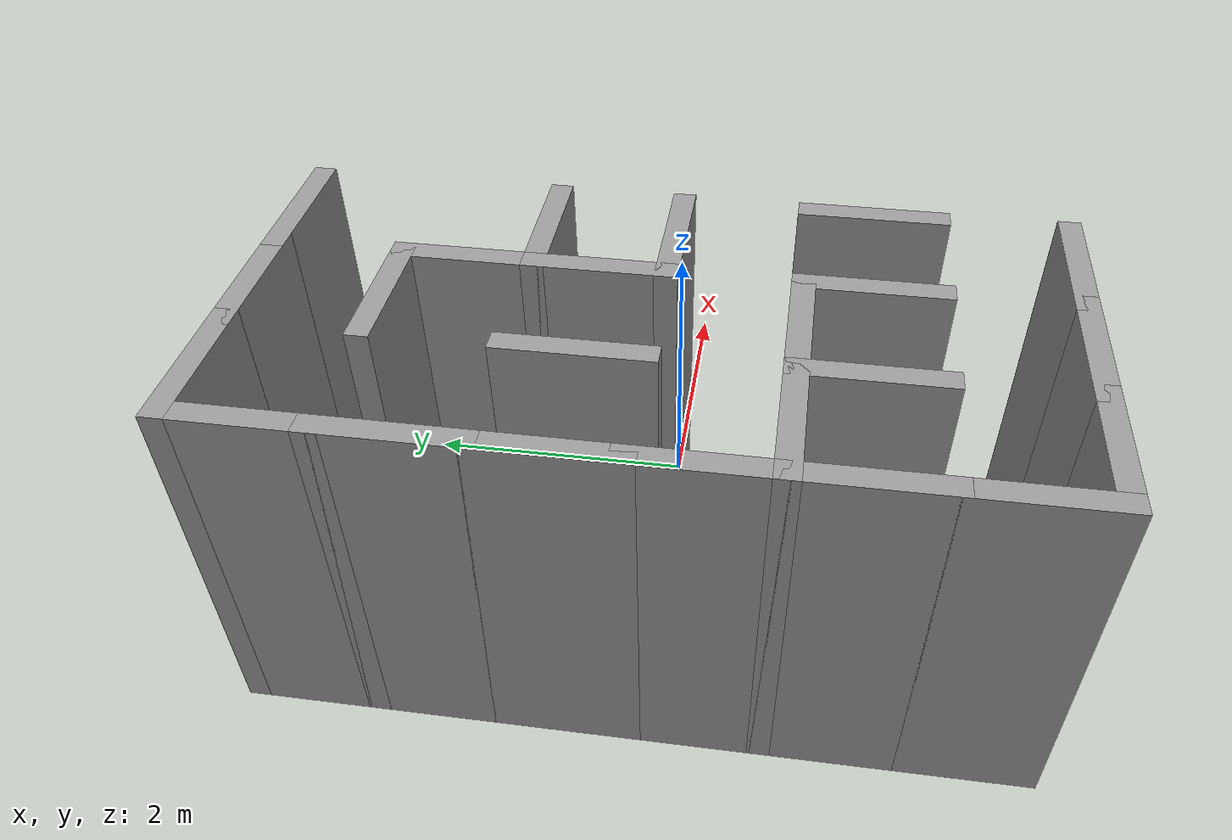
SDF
<sdf version="1.7">
 <model name="mazeMap">
  <link name="Wall_102">
   <pose>-2.55 -1.275 0 0 -0 1.5708</pose>
   <visual name="Wall_102_Visual">
    <pose>0 0 1.25 0 -0 0</pose>
    <geometry><box><size>1 0.15 2.5</size></box></geometry>
    <material>
     <script><uri>file://media/materials/scripts/gazebo.material</uri><name>Gazebo/Grey</name></script>
     <ambient>1 1 1 1</ambient>
     <shader type="pixel"/>
    </material>
    <meta><layer>0</layer></meta>
   </visual>
   <collision name="Wall_102_Collision">
    <pose>0 0 1.25 0 -0 0</pose>
    <geometry><box><size>1 0.15 2.5</size></box></geometry>
    <surface>
     <friction>
      <ode><mu>1</mu><mu2>1</mu2><fdir1>0 0 0</fdir1><slip1>0</slip1><slip2>0</slip2></ode>
      <torsional>
       <coefficient>1</coefficient>
       <patch_radius>0</patch_radius>
       <surface_radius>0</surface_radius>
       <use_patch_radius>1</use_patch_radius>
       <ode><slip>0</slip></ode>
      </torsional>
     </friction>
     <bounce><restitution_coefficient>0</restitution_coefficient><threshold>1e+06</threshold></bounce>
     <contact>
      <collide_without_contact>0</collide_without_contact>
      <collide_without_contact_bitmask>1</collide_without_contact_bitmask>
      <collide_bitmask>1</collide_bitmask>
      <ode>
       <soft_cfm>0</soft_cfm>
       <soft_erp>0.2</soft_erp>
       <kp>1e+13</kp>
       <kd>1</kd>
       <max_vel>0.01</max_vel>
       <min_depth>0</min_depth>
      </ode>
      <bullet>
       <split_impulse>1</split_impulse>
       <split_impulse_penetration_threshold>-0.01</split_impulse_penetration_threshold>
       <soft_cfm>0</soft_cfm>
       <soft_erp>0.2</soft_erp>
       <kp>1e+13</kp>
       <kd>1</kd>
      </bullet>
     </contact>
    </surface>
   </collision>
  </link>
  <link name="Wall_103">
   <pose>-2.125 -0.85 0 0 -0 0</pose>
   <visual name="Wall_103_Visual">
    <pose>0 0 1.25 0 -0 0</pose>
    <geometry><box><size>1 0.15 2.5</size></box></geometry>
    <material>
     <script><uri>file://media/materials/scripts/gazebo.material</uri><name>Gazebo/Grey</name></script>
     <ambient>1 1 1 1</ambient>
     <shader type="pixel"/>
    </material>
    <meta><layer>0</layer></meta>
   </visual>
   <collision name="Wall_103_Collision">
    <pose>0 0 1.25 0 -0 0</pose>
    <geometry><box><size>1 0.15 2.5</size></box></geometry>
    <surface>
     <friction>
      <ode><mu>1</mu><mu2>1</mu2><fdir1>0 0 0</fdir1><slip1>0</slip1><slip2>0</slip2></ode>
      <torsional>
       <coefficient>1</coefficient>
       <patch_radius>0</patch_radius>
       <surface_radius>0</surface_radius>
       <use_patch_radius>1</use_patch_radius>
       <ode><slip>0</slip></ode>
      </torsional>
     </friction>
     <bounce><restitution_coefficient>0</restitution_coefficient><threshold>1e+06</threshold></bounce>
     <contact>
      <collide_without_contact>0</collide_without_contact>
      <collide_without_contact_bitmask>1</collide_without_contact_bitmask>
      <collide_bitmask>1</collide_bitmask>
      <ode>
       <soft_cfm>0</soft_cfm>
       <soft_erp>0.2</soft_erp>
       <kp>1e+13</kp>
       <kd>1</kd>
       <max_vel>0.01</max_vel>
       <min_depth>0</min_depth>
      </ode>
      <bullet>
       <split_impulse>1</split_impulse>
       <split_impulse_penetration_threshold>-0.01</split_impulse_penetration_threshold>
       <soft_cfm>0</soft_cfm>
       <soft_erp>0.2</soft_erp>
       <kp>1e+13</kp>
       <kd>1</kd>
      </bullet>
     </contact>
    </surface>
   </collision>
  </link>
  <link name="Wall_104">
   <pose>-1.7 -1.275 0 0 0 -1.5708</pose>
   <visual name="Wall_104_Visual">
    <pose>0 0 1.25 0 -0 0</pose>
    <geometry><box><size>1 0.15 2.5</size></box></geometry>
    <material>
     <script><uri>file://media/materials/scripts/gazebo.material</uri><name>Gazebo/Grey</name></script>
     <ambient>1 1 1 1</ambient>
     <shader type="pixel"/>
    </material>
    <meta><layer>0</layer></meta>
   </visual>
   <collision name="Wall_104_Collision">
    <pose>0 0 1.25 0 -0 0</pose>
    <geometry><box><size>1 0.15 2.5</size></box></geometry>
    <surface>
     <friction>
      <ode><mu>1</mu><mu2>1</mu2><fdir1>0 0 0</fdir1><slip1>0</slip1><slip2>0</slip2></ode>
      <torsional>
       <coefficient>1</coefficient>
       <patch_radius>0</patch_radius>
       <surface_radius>0</surface_radius>
       <use_patch_radius>1</use_patch_radius>
       <ode><slip>0</slip></ode>
      </torsional>
     </friction>
     <bounce><restitution_coefficient>0</restitution_coefficient><threshold>1e+06</threshold></bounce>
     <contact>
      <collide_without_contact>0</collide_without_contact>
      <collide_without_contact_bitmask>1</collide_without_contact_bitmask>
      <collide_bitmask>1</collide_bitmask>
      <ode>
       <soft_cfm>0</soft_cfm>
       <soft_erp>0.2</soft_erp>
       <kp>1e+13</kp>
       <kd>1</kd>
       <max_vel>0.01</max_vel>
       <min_depth>0</min_depth>
      </ode>
      <bullet>
       <split_impulse>1</split_impulse>
       <split_impulse_penetration_threshold>-0.01</split_impulse_penetration_threshold>
       <soft_cfm>0</soft_cfm>
       <soft_erp>0.2</soft_erp>
       <kp>1e+13</kp>
       <kd>1</kd>
      </bullet>
     </contact>
    </surface>
   </collision>
  </link>
  <link name="Wall_106">
   <pose>-2.55 -2.125 0 0 0 -1.5708</pose>
   <visual name="Wall_106_Visual">
    <pose>0 0 1.25 0 -0 0</pose>
    <geometry><box><size>1 0.15 2.5</size></box></geometry>
    <material>
     <script><uri>file://media/materials/scripts/gazebo.material</uri><name>Gazebo/Grey</name></script>
     <ambient>1 1 1 1</ambient>
     <shader type="pixel"/>
    </material>
    <meta><layer>0</layer></meta>
   </visual>
   <collision name="Wall_106_Collision">
    <pose>0 0 1.25 0 -0 0</pose>
    <geometry><box><size>1 0.15 2.5</size></box></geometry>
    <surface>
     <friction>
      <ode><mu>1</mu><mu2>1</mu2><fdir1>0 0 0</fdir1><slip1>0</slip1><slip2>0</slip2></ode>
      <torsional>
       <coefficient>1</coefficient>
       <patch_radius>0</patch_radius>
       <surface_radius>0</surface_radius>
       <use_patch_radius>1</use_patch_radius>
       <ode><slip>0</slip></ode>
      </torsional>
     </friction>
     <bounce><restitution_coefficient>0</restitution_coefficient><threshold>1e+06</threshold></bounce>
     <contact>
      <collide_without_contact>0</collide_without_contact>
      <collide_without_contact_bitmask>1</collide_without_contact_bitmask>
      <collide_bitmask>1</collide_bitmask>
      <ode>
       <soft_cfm>0</soft_cfm>
       <soft_erp>0.2</soft_erp>
       <kp>1e+13</kp>
       <kd>1</kd>
       <max_vel>0.01</max_vel>
       <min_depth>0</min_depth>
      </ode>
      <bullet>
       <split_impulse>1</split_impulse>
       <split_impulse_penetration_threshold>-0.01</split_impulse_penetration_threshold>
       <soft_cfm>0</soft_cfm>
       <soft_erp>0.2</soft_erp>
       <kp>1e+13</kp>
       <kd>1</kd>
      </bullet>
     </contact>
    </surface>
   </collision>
  </link>
  <link name="Wall_108">
   <pose>-2.125 -2.55 0 0 -0 0</pose>
   <visual name="Wall_108_Visual">
    <pose>0 0 1.25 0 -0 0</pose>
    <geometry><box><size>1 0.15 2.5</size></box></geometry>
    <material>
     <script><uri>file://media/materials/scripts/gazebo.material</uri><name>Gazebo/Grey</name></script>
     <ambient>1 1 1 1</ambient>
     <shader type="pixel"/>
    </material>
    <meta><layer>0</layer></meta>
   </visual>
   <collision name="Wall_108_Collision">
    <pose>0 0 1.25 0 -0 0</pose>
    <geometry><box><size>1 0.15 2.5</size></box></geometry>
    <surface>
     <friction>
      <ode><mu>1</mu><mu2>1</mu2><fdir1>0 0 0</fdir1><slip1>0</slip1><slip2>0</slip2></ode>
      <torsional>
       <coefficient>1</coefficient>
       <patch_radius>0</patch_radius>
       <surface_radius>0</surface_radius>
       <use_patch_radius>1</use_patch_radius>
       <ode><slip>0</slip></ode>
      </torsional>
     </friction>
     <bounce><restitution_coefficient>0</restitution_coefficient><threshold>1e+06</threshold></bounce>
     <contact>
      <collide_without_contact>0</collide_without_contact>
      <collide_without_contact_bitmask>1</collide_without_contact_bitmask>
      <collide_bitmask>1</collide_bitmask>
      <ode>
       <soft_cfm>0</soft_cfm>
       <soft_erp>0.2</soft_erp>
       <kp>1e+13</kp>
       <kd>1</kd>
       <max_vel>0.01</max_vel>
       <min_depth>0</min_depth>
      </ode>
      <bullet>
       <split_impulse>1</split_impulse>
       <split_impulse_penetration_threshold>-0.01</split_impulse_penetration_threshold>
       <soft_cfm>0</soft_cfm>
       <soft_erp>0.2</soft_erp>
       <kp>1e+13</kp>
       <kd>1</kd>
      </bullet>
     </contact>
    </surface>
   </collision>
  </link>
  <link name="Wall_111">
   <pose>-0.85 -1.275 0 0 -0 1.5708</pose>
   <visual name="Wall_111_Visual">
    <pose>0 0 1.25 0 -0 0</pose>
    <geometry><box><size>1 0.15 2.5</size></box></geometry>
    <material>
     <script><uri>file://media/materials/scripts/gazebo.material</uri><name>Gazebo/Grey</name></script>
     <ambient>1 1 1 1</ambient>
     <shader type="pixel"/>
    </material>
    <meta><layer>0</layer></meta>
   </visual>
   <collision name="Wall_111_Collision">
    <pose>0 0 1.25 0 -0 0</pose>
    <geometry><box><size>1 0.15 2.5</size></box></geometry>
    <surface>
     <friction>
      <ode><mu>1</mu><mu2>1</mu2><fdir1>0 0 0</fdir1><slip1>0</slip1><slip2>0</slip2></ode>
      <torsional>
       <coefficient>1</coefficient>
       <patch_radius>0</patch_radius>
       <surface_radius>0</surface_radius>
       <use_patch_radius>1</use_patch_radius>
       <ode><slip>0</slip></ode>
      </torsional>
     </friction>
     <bounce><restitution_coefficient>0</restitution_coefficient><threshold>1e+06</threshold></bounce>
     <contact>
      <collide_without_contact>0</collide_without_contact>
      <collide_without_contact_bitmask>1</collide_without_contact_bitmask>
      <collide_bitmask>1</collide_bitmask>
      <ode>
       <soft_cfm>0</soft_cfm>
       <soft_erp>0.2</soft_erp>
       <kp>1e+13</kp>
       <kd>1</kd>
       <max_vel>0.01</max_vel>
       <min_depth>0</min_depth>
      </ode>
      <bullet>
       <split_impulse>1</split_impulse>
       <split_impulse_penetration_threshold>-0.01</split_impulse_penetration_threshold>
       <soft_cfm>0</soft_cfm>
       <soft_erp>0.2</soft_erp>
       <kp>1e+13</kp>
       <kd>1</kd>
      </bullet>
     </contact>
    </surface>
   </collision>
  </link>
  <link name="Wall_112">
   <pose>-1.275 -0.85 0 0 -0 3.14159</pose>
   <visual name="Wall_112_Visual">
    <pose>0 0 1.25 0 -0 0</pose>
    <geometry><box><size>1 0.15 2.5</size></box></geometry>
    <material>
     <script><uri>file://media/materials/scripts/gazebo.material</uri><name>Gazebo/Grey</name></script>
     <ambient>1 1 1 1</ambient>
     <shader type="pixel"/>
    </material>
    <meta><layer>0</layer></meta>
   </visual>
   <collision name="Wall_112_Collision">
    <pose>0 0 1.25 0 -0 0</pose>
    <geometry><box><size>1 0.15 2.5</size></box></geometry>
    <surface>
     <friction>
      <ode><mu>1</mu><mu2>1</mu2><fdir1>0 0 0</fdir1><slip1>0</slip1><slip2>0</slip2></ode>
      <torsional>
       <coefficient>1</coefficient>
       <patch_radius>0</patch_radius>
       <surface_radius>0</surface_radius>
       <use_patch_radius>1</use_patch_radius>
       <ode><slip>0</slip></ode>
      </torsional>
     </friction>
     <bounce><restitution_coefficient>0</restitution_coefficient><threshold>1e+06</threshold></bounce>
     <contact>
      <collide_without_contact>0</collide_without_contact>
      <collide_without_contact_bitmask>1</collide_without_contact_bitmask>
      <collide_bitmask>1</collide_bitmask>
      <ode>
       <soft_cfm>0</soft_cfm>
       <soft_erp>0.2</soft_erp>
       <kp>1e+13</kp>
       <kd>1</kd>
       <max_vel>0.01</max_vel>
       <min_depth>0</min_depth>
      </ode>
      <bullet>
       <split_impulse>1</split_impulse>
       <split_impulse_penetration_threshold>-0.01</split_impulse_penetration_threshold>
       <soft_cfm>0</soft_cfm>
       <soft_erp>0.2</soft_erp>
       <kp>1e+13</kp>
       <kd>1</kd>
      </bullet>
     </contact>
    </surface>
   </collision>
  </link>
  <link name="Wall_118">
   <pose>-0.425 0 0 0 -0 3.14159</pose>
   <visual name="Wall_118_Visual">
    <pose>0 0 1.25 0 -0 0</pose>
    <geometry><box><size>1 0.15 2.5</size></box></geometry>
    <material>
     <script><uri>file://media/materials/scripts/gazebo.material</uri><name>Gazebo/Grey</name></script>
     <ambient>1 1 1 1</ambient>
     <shader type="pixel"/>
    </material>
    <meta><layer>0</layer></meta>
   </visual>
   <collision name="Wall_118_Collision">
    <pose>0 0 1.25 0 -0 0</pose>
    <geometry><box><size>1 0.15 2.5</size></box></geometry>
    <surface>
     <friction>
      <ode><mu>1</mu><mu2>1</mu2><fdir1>0 0 0</fdir1><slip1>0</slip1><slip2>0</slip2></ode>
      <torsional>
       <coefficient>1</coefficient>
       <patch_radius>0</patch_radius>
       <surface_radius>0</surface_radius>
       <use_patch_radius>1</use_patch_radius>
       <ode><slip>0</slip></ode>
      </torsional>
     </friction>
     <bounce><restitution_coefficient>0</restitution_coefficient><threshold>1e+06</threshold></bounce>
     <contact>
      <collide_without_contact>0</collide_without_contact>
      <collide_without_contact_bitmask>1</collide_without_contact_bitmask>
      <collide_bitmask>1</collide_bitmask>
      <ode>
       <soft_cfm>0</soft_cfm>
       <soft_erp>0.2</soft_erp>
       <kp>1e+13</kp>
       <kd>1</kd>
       <max_vel>0.01</max_vel>
       <min_depth>0</min_depth>
      </ode>
      <bullet>
       <split_impulse>1</split_impulse>
       <split_impulse_penetration_threshold>-0.01</split_impulse_penetration_threshold>
       <soft_cfm>0</soft_cfm>
       <soft_erp>0.2</soft_erp>
       <kp>1e+13</kp>
       <kd>1</kd>
      </bullet>
     </contact>
    </surface>
   </collision>
  </link>
  <link name="Wall_120">
   <pose>-0.85 0.425 0 0 -0 1.5708</pose>
   <visual name="Wall_120_Visual">
    <pose>0 0 1.25 0 -0 0</pose>
    <geometry><box><size>1 0.15 2.5</size></box></geometry>
    <material>
     <script><uri>file://media/materials/scripts/gazebo.material</uri><name>Gazebo/Grey</name></script>
     <ambient>1 1 1 1</ambient>
     <shader type="pixel"/>
    </material>
    <meta><layer>0</layer></meta>
   </visual>
   <collision name="Wall_120_Collision">
    <pose>0 0 1.25 0 -0 0</pose>
    <geometry><box><size>1 0.15 2.5</size></box></geometry>
    <surface>
     <friction>
      <ode><mu>1</mu><mu2>1</mu2><fdir1>0 0 0</fdir1><slip1>0</slip1><slip2>0</slip2></ode>
      <torsional>
       <coefficient>1</coefficient>
       <patch_radius>0</patch_radius>
       <surface_radius>0</surface_radius>
       <use_patch_radius>1</use_patch_radius>
       <ode><slip>0</slip></ode>
      </torsional>
     </friction>
     <bounce><restitution_coefficient>0</restitution_coefficient><threshold>1e+06</threshold></bounce>
     <contact>
      <collide_without_contact>0</collide_without_contact>
      <collide_without_contact_bitmask>1</collide_without_contact_bitmask>
      <collide_bitmask>1</collide_bitmask>
      <ode>
       <soft_cfm>0</soft_cfm>
       <soft_erp>0.2</soft_erp>
       <kp>1e+13</kp>
       <kd>1</kd>
       <max_vel>0.01</max_vel>
       <min_depth>0</min_depth>
      </ode>
      <bullet>
       <split_impulse>1</split_impulse>
       <split_impulse_penetration_threshold>-0.01</split_impulse_penetration_threshold>
       <soft_cfm>0</soft_cfm>
       <soft_erp>0.2</soft_erp>
       <kp>1e+13</kp>
       <kd>1</kd>
      </bullet>
     </contact>
    </surface>
   </collision>
  </link>
  <link name="Wall_121">
   <pose>-0.425 0.85 0 0 -0 0</pose>
   <visual name="Wall_121_Visual">
    <pose>0 0 1.25 0 -0 0</pose>
    <geometry><box><size>1 0.15 2.5</size></box></geometry>
    <material>
     <script><uri>file://media/materials/scripts/gazebo.material</uri><name>Gazebo/Grey</name></script>
     <ambient>1 1 1 1</ambient>
     <shader type="pixel"/>
    </material>
    <meta><layer>0</layer></meta>
   </visual>
   <collision name="Wall_121_Collision">
    <pose>0 0 1.25 0 -0 0</pose>
    <geometry><box><size>1 0.15 2.5</size></box></geometry>
    <surface>
     <friction>
      <ode><mu>1</mu><mu2>1</mu2><fdir1>0 0 0</fdir1><slip1>0</slip1><slip2>0</slip2></ode>
      <torsional>
       <coefficient>1</coefficient>
       <patch_radius>0</patch_radius>
       <surface_radius>0</surface_radius>
       <use_patch_radius>1</use_patch_radius>
       <ode><slip>0</slip></ode>
      </torsional>
     </friction>
     <bounce><restitution_coefficient>0</restitution_coefficient><threshold>1e+06</threshold></bounce>
     <contact>
      <collide_without_contact>0</collide_without_contact>
      <collide_without_contact_bitmask>1</collide_without_contact_bitmask>
      <collide_bitmask>1</collide_bitmask>
      <ode>
       <soft_cfm>0</soft_cfm>
       <soft_erp>0.2</soft_erp>
       <kp>1e+13</kp>
       <kd>1</kd>
       <max_vel>0.01</max_vel>
       <min_depth>0</min_depth>
      </ode>
      <bullet>
       <split_impulse>1</split_impulse>
       <split_impulse_penetration_threshold>-0.01</split_impulse_penetration_threshold>
       <soft_cfm>0</soft_cfm>
       <soft_erp>0.2</soft_erp>
       <kp>1e+13</kp>
       <kd>1</kd>
      </bullet>
     </contact>
    </surface>
   </collision>
  </link>
  <link name="Wall_127">
   <pose>-1.275 -2.55 0 0 -0 0</pose>
   <visual name="Wall_127_Visual">
    <pose>0 0 1.25 0 -0 0</pose>
    <geometry><box><size>1 0.15 2.5</size></box></geometry>
    <material>
     <script><uri>file://media/materials/scripts/gazebo.material</uri><name>Gazebo/Grey</name></script>
     <ambient>1 1 1 1</ambient>
     <shader type="pixel"/>
    </material>
    <meta><layer>0</layer></meta>
   </visual>
   <collision name="Wall_127_Collision">
    <pose>0 0 1.25 0 -0 0</pose>
    <geometry><box><size>1 0.15 2.5</size></box></geometry>
    <surface>
     <friction>
      <ode><mu>1</mu><mu2>1</mu2><fdir1>0 0 0</fdir1><slip1>0</slip1><slip2>0</slip2></ode>
      <torsional>
       <coefficient>1</coefficient>
       <patch_radius>0</patch_radius>
       <surface_radius>0</surface_radius>
       <use_patch_radius>1</use_patch_radius>
       <ode><slip>0</slip></ode>
      </torsional>
     </friction>
     <bounce><restitution_coefficient>0</restitution_coefficient><threshold>1e+06</threshold></bounce>
     <contact>
      <collide_without_contact>0</collide_without_contact>
      <collide_without_contact_bitmask>1</collide_without_contact_bitmask>
      <collide_bitmask>1</collide_bitmask>
      <ode>
       <soft_cfm>0</soft_cfm>
       <soft_erp>0.2</soft_erp>
       <kp>1e+13</kp>
       <kd>1</kd>
       <max_vel>0.01</max_vel>
       <min_depth>0</min_depth>
      </ode>
      <bullet>
       <split_impulse>1</split_impulse>
       <split_impulse_penetration_threshold>-0.01</split_impulse_penetration_threshold>
       <soft_cfm>0</soft_cfm>
       <soft_erp>0.2</soft_erp>
       <kp>1e+13</kp>
       <kd>1</kd>
      </bullet>
     </contact>
    </surface>
   </collision>
  </link>
  <link name="Wall_131">
   <pose>-0.425 -2.55 0 0 -0 3.14159</pose>
   <visual name="Wall_131_Visual">
    <pose>0 0 1.25 0 -0 0</pose>
    <geometry><box><size>1 0.15 2.5</size></box></geometry>
    <material>
     <script><uri>file://media/materials/scripts/gazebo.material</uri><name>Gazebo/Grey</name></script>
     <ambient>1 1 1 1</ambient>
     <shader type="pixel"/>
    </material>
    <meta><layer>0</layer></meta>
   </visual>
   <collision name="Wall_131_Collision">
    <pose>0 0 1.25 0 -0 0</pose>
    <geometry><box><size>1 0.15 2.5</size></box></geometry>
    <surface>
     <friction>
      <ode><mu>1</mu><mu2>1</mu2><fdir1>0 0 0</fdir1><slip1>0</slip1><slip2>0</slip2></ode>
      <torsional>
       <coefficient>1</coefficient>
       <patch_radius>0</patch_radius>
       <surface_radius>0</surface_radius>
       <use_patch_radius>1</use_patch_radius>
       <ode><slip>0</slip></ode>
      </torsional>
     </friction>
     <bounce><restitution_coefficient>0</restitution_coefficient><threshold>1e+06</threshold></bounce>
     <contact>
      <collide_without_contact>0</collide_without_contact>
      <collide_without_contact_bitmask>1</collide_without_contact_bitmask>
      <collide_bitmask>1</collide_bitmask>
      <ode>
       <soft_cfm>0</soft_cfm>
       <soft_erp>0.2</soft_erp>
       <kp>1e+13</kp>
       <kd>1</kd>
       <max_vel>0.01</max_vel>
       <min_depth>0</min_depth>
      </ode>
      <bullet>
       <split_impulse>1</split_impulse>
       <split_impulse_penetration_threshold>-0.01</split_impulse_penetration_threshold>
       <soft_cfm>0</soft_cfm>
       <soft_erp>0.2</soft_erp>
       <kp>1e+13</kp>
       <kd>1</kd>
      </bullet>
     </contact>
    </surface>
   </collision>
  </link>
  <link name="Wall_136">
   <pose>0 -1.275 0 0 -0 1.5708</pose>
   <visual name="Wall_136_Visual">
    <pose>0 0 1.25 0 -0 0</pose>
    <geometry><box><size>1 0.15 2.5</size></box></geometry>
    <material>
     <script><uri>file://media/materials/scripts/gazebo.material</uri><name>Gazebo/Grey</name></script>
     <ambient>1 1 1 1</ambient>
     <shader type="pixel"/>
    </material>
    <meta><layer>0</layer></meta>
   </visual>
   <collision name="Wall_136_Collision">
    <pose>0 0 1.25 0 -0 0</pose>
    <geometry><box><size>1 0.15 2.5</size></box></geometry>
    <surface>
     <friction>
      <ode><mu>1</mu><mu2>1</mu2><fdir1>0 0 0</fdir1><slip1>0</slip1><slip2>0</slip2></ode>
      <torsional>
       <coefficient>1</coefficient>
       <patch_radius>0</patch_radius>
       <surface_radius>0</surface_radius>
       <use_patch_radius>1</use_patch_radius>
       <ode><slip>0</slip></ode>
      </torsional>
     </friction>
     <bounce><restitution_coefficient>0</restitution_coefficient><threshold>1e+06</threshold></bounce>
     <contact>
      <collide_without_contact>0</collide_without_contact>
      <collide_without_contact_bitmask>1</collide_without_contact_bitmask>
      <collide_bitmask>1</collide_bitmask>
      <ode>
       <soft_cfm>0</soft_cfm>
       <soft_erp>0.2</soft_erp>
       <kp>1e+13</kp>
       <kd>1</kd>
       <max_vel>0.01</max_vel>
       <min_depth>0</min_depth>
      </ode>
      <bullet>
       <split_impulse>1</split_impulse>
       <split_impulse_penetration_threshold>-0.01</split_impulse_penetration_threshold>
       <soft_cfm>0</soft_cfm>
       <soft_erp>0.2</soft_erp>
       <kp>1e+13</kp>
       <kd>1</kd>
      </bullet>
     </contact>
    </surface>
   </collision>
  </link>
  <link name="Wall_166">
   <pose>-1.7 0.425 0 0 0 -1.5708</pose>
   <visual name="Wall_166_Visual">
    <pose>0 0 1.25 0 -0 0</pose>
    <geometry><box><size>1 0.15 2.5</size></box></geometry>
    <material>
     <script><uri>file://media/materials/scripts/gazebo.material</uri><name>Gazebo/Grey</name></script>
     <ambient>1 1 1 1</ambient>
     <shader type="pixel"/>
    </material>
    <meta><layer>0</layer></meta>
   </visual>
   <collision name="Wall_166_Collision">
    <pose>0 0 1.25 0 -0 0</pose>
    <geometry><box><size>1 0.15 2.5</size></box></geometry>
    <surface>
     <friction>
      <ode><mu>1</mu><mu2>1</mu2><fdir1>0 0 0</fdir1><slip1>0</slip1><slip2>0</slip2></ode>
      <torsional>
       <coefficient>1</coefficient>
       <patch_radius>0</patch_radius>
       <surface_radius>0</surface_radius>
       <use_patch_radius>1</use_patch_radius>
       <ode><slip>0</slip></ode>
      </torsional>
     </friction>
     <bounce><restitution_coefficient>0</restitution_coefficient><threshold>1e+06</threshold></bounce>
     <contact>
      <collide_without_contact>0</collide_without_contact>
      <collide_without_contact_bitmask>1</collide_without_contact_bitmask>
      <collide_bitmask>1</collide_bitmask>
      <ode>
       <soft_cfm>0</soft_cfm>
       <soft_erp>0.2</soft_erp>
       <kp>1e+13</kp>
       <kd>1</kd>
       <max_vel>0.01</max_vel>
       <min_depth>0</min_depth>
      </ode>
      <bullet>
       <split_impulse>1</split_impulse>
       <split_impulse_penetration_threshold>-0.01</split_impulse_penetration_threshold>
       <soft_cfm>0</soft_cfm>
       <soft_erp>0.2</soft_erp>
       <kp>1e+13</kp>
       <kd>1</kd>
      </bullet>
     </contact>
    </surface>
   </collision>
  </link>
  <link name="Wall_169">
   <pose>-2.55 0.425 0 0 0 -1.5708</pose>
   <visual name="Wall_169_Visual">
    <pose>0 0 1.25 0 -0 0</pose>
    <geometry><box><size>1 0.15 2.5</size></box></geometry>
    <material>
     <script><uri>file://media/materials/scripts/gazebo.material</uri><name>Gazebo/Grey</name></script>
     <ambient>1 1 1 1</ambient>
     <shader type="pixel"/>
    </material>
    <meta><layer>0</layer></meta>
   </visual>
   <collision name="Wall_169_Collision">
    <pose>0 0 1.25 0 -0 0</pose>
    <geometry><box><size>1 0.15 2.5</size></box></geometry>
    <surface>
     <friction>
      <ode><mu>1</mu><mu2>1</mu2><fdir1>0 0 0</fdir1><slip1>0</slip1><slip2>0</slip2></ode>
      <torsional>
       <coefficient>1</coefficient>
       <patch_radius>0</patch_radius>
       <surface_radius>0</surface_radius>
       <use_patch_radius>1</use_patch_radius>
       <ode><slip>0</slip></ode>
      </torsional>
     </friction>
     <bounce><restitution_coefficient>0</restitution_coefficient><threshold>1e+06</threshold></bounce>
     <contact>
      <collide_without_contact>0</collide_without_contact>
      <collide_without_contact_bitmask>1</collide_without_contact_bitmask>
      <collide_bitmask>1</collide_bitmask>
      <ode>
       <soft_cfm>0</soft_cfm>
       <soft_erp>0.2</soft_erp>
       <kp>1e+13</kp>
       <kd>1</kd>
       <max_vel>0.01</max_vel>
       <min_depth>0</min_depth>
      </ode>
      <bullet>
       <split_impulse>1</split_impulse>
       <split_impulse_penetration_threshold>-0.01</split_impulse_penetration_threshold>
       <soft_cfm>0</soft_cfm>
       <soft_erp>0.2</soft_erp>
       <kp>1e+13</kp>
       <kd>1</kd>
      </bullet>
     </contact>
    </surface>
   </collision>
  </link>
  <link name="Wall_172">
   <pose>-2.55 -0.425 0 0 0 -1.5708</pose>
   <visual name="Wall_172_Visual">
    <pose>0 0 1.25 0 -0 0</pose>
    <geometry><box><size>1 0.15 2.5</size></box></geometry>
    <material>
     <script><uri>file://media/materials/scripts/gazebo.material</uri><name>Gazebo/Grey</name></script>
     <ambient>1 1 1 1</ambient>
     <shader type="pixel"/>
    </material>
    <meta><layer>0</layer></meta>
   </visual>
   <collision name="Wall_172_Collision">
    <pose>0 0 1.25 0 -0 0</pose>
    <geometry><box><size>1 0.15 2.5</size></box></geometry>
    <surface>
     <friction>
      <ode><mu>1</mu><mu2>1</mu2><fdir1>0 0 0</fdir1><slip1>0</slip1><slip2>0</slip2></ode>
      <torsional>
       <coefficient>1</coefficient>
       <patch_radius>0</patch_radius>
       <surface_radius>0</surface_radius>
       <use_patch_radius>1</use_patch_radius>
       <ode><slip>0</slip></ode>
      </torsional>
     </friction>
     <bounce><restitution_coefficient>0</restitution_coefficient><threshold>1e+06</threshold></bounce>
     <contact>
      <collide_without_contact>0</collide_without_contact>
      <collide_without_contact_bitmask>1</collide_without_contact_bitmask>
      <collide_bitmask>1</collide_bitmask>
      <ode>
       <soft_cfm>0</soft_cfm>
       <soft_erp>0.2</soft_erp>
       <kp>1e+13</kp>
       <kd>1</kd>
       <max_vel>0.01</max_vel>
       <min_depth>0</min_depth>
      </ode>
      <bullet>
       <split_impulse>1</split_impulse>
       <split_impulse_penetration_threshold>-0.01</split_impulse_penetration_threshold>
       <soft_cfm>0</soft_cfm>
       <soft_erp>0.2</soft_erp>
       <kp>1e+13</kp>
       <kd>1</kd>
      </bullet>
     </contact>
    </surface>
   </collision>
  </link>
  <link name="Wall_174">
   <pose>-2.55 1.275 0 0 -0 1.5708</pose>
   <visual name="Wall_174_Visual">
    <pose>0 0 1.25 0 -0 0</pose>
    <geometry><box><size>1 0.15 2.5</size></box></geometry>
    <material>
     <script><uri>file://media/materials/scripts/gazebo.material</uri><name>Gazebo/Grey</name></script>
     <ambient>1 1 1 1</ambient>
     <shader type="pixel"/>
    </material>
    <meta><layer>0</layer></meta>
   </visual>
   <collision name="Wall_174_Collision">
    <pose>0 0 1.25 0 -0 0</pose>
    <geometry><box><size>1 0.15 2.5</size></box></geometry>
    <surface>
     <friction>
      <ode><mu>1</mu><mu2>1</mu2><fdir1>0 0 0</fdir1><slip1>0</slip1><slip2>0</slip2></ode>
      <torsional>
       <coefficient>1</coefficient>
       <patch_radius>0</patch_radius>
       <surface_radius>0</surface_radius>
       <use_patch_radius>1</use_patch_radius>
       <ode><slip>0</slip></ode>
      </torsional>
     </friction>
     <bounce><restitution_coefficient>0</restitution_coefficient><threshold>1e+06</threshold></bounce>
     <contact>
      <collide_without_contact>0</collide_without_contact>
      <collide_without_contact_bitmask>1</collide_without_contact_bitmask>
      <collide_bitmask>1</collide_bitmask>
      <ode>
       <soft_cfm>0</soft_cfm>
       <soft_erp>0.2</soft_erp>
       <kp>1e+13</kp>
       <kd>1</kd>
       <max_vel>0.01</max_vel>
       <min_depth>0</min_depth>
      </ode>
      <bullet>
       <split_impulse>1</split_impulse>
       <split_impulse_penetration_threshold>-0.01</split_impulse_penetration_threshold>
       <soft_cfm>0</soft_cfm>
       <soft_erp>0.2</soft_erp>
       <kp>1e+13</kp>
       <kd>1</kd>
      </bullet>
     </contact>
    </surface>
   </collision>
  </link>
  <link name="Wall_177">
   <pose>-2.125 2.55 0 0 -0 3.14159</pose>
   <visual name="Wall_177_Visual">
    <pose>0 0 1.25 0 -0 0</pose>
    <geometry><box><size>1 0.15 2.5</size></box></geometry>
    <material>
     <script><uri>file://media/materials/scripts/gazebo.material</uri><name>Gazebo/Grey</name></script>
     <ambient>1 1 1 1</ambient>
     <shader type="pixel"/>
    </material>
    <meta><layer>0</layer></meta>
   </visual>
   <collision name="Wall_177_Collision">
    <pose>0 0 1.25 0 -0 0</pose>
    <geometry><box><size>1 0.15 2.5</size></box></geometry>
    <surface>
     <friction>
      <ode><mu>1</mu><mu2>1</mu2><fdir1>0 0 0</fdir1><slip1>0</slip1><slip2>0</slip2></ode>
      <torsional>
       <coefficient>1</coefficient>
       <patch_radius>0</patch_radius>
       <surface_radius>0</surface_radius>
       <use_patch_radius>1</use_patch_radius>
       <ode><slip>0</slip></ode>
      </torsional>
     </friction>
     <bounce><restitution_coefficient>0</restitution_coefficient><threshold>1e+06</threshold></bounce>
     <contact>
      <collide_without_contact>0</collide_without_contact>
      <collide_without_contact_bitmask>1</collide_without_contact_bitmask>
      <collide_bitmask>1</collide_bitmask>
      <ode>
       <soft_cfm>0</soft_cfm>
       <soft_erp>0.2</soft_erp>
       <kp>1e+13</kp>
       <kd>1</kd>
       <max_vel>0.01</max_vel>
       <min_depth>0</min_depth>
      </ode>
      <bullet>
       <split_impulse>1</split_impulse>
       <split_impulse_penetration_threshold>-0.01</split_impulse_penetration_threshold>
       <soft_cfm>0</soft_cfm>
       <soft_erp>0.2</soft_erp>
       <kp>1e+13</kp>
       <kd>1</kd>
      </bullet>
     </contact>
    </surface>
   </collision>
  </link>
  <link name="Wall_178">
   <pose>-2.55 2.125 0 0 0 -1.5708</pose>
   <visual name="Wall_178_Visual">
    <pose>0 0 1.25 0 -0 0</pose>
    <geometry><box><size>1 0.15 2.5</size></box></geometry>
    <material>
     <script><uri>file://media/materials/scripts/gazebo.material</uri><name>Gazebo/Grey</name></script>
     <ambient>1 1 1 1</ambient>
     <shader type="pixel"/>
    </material>
    <meta><layer>0</layer></meta>
   </visual>
   <collision name="Wall_178_Collision">
    <pose>0 0 1.25 0 -0 0</pose>
    <geometry><box><size>1 0.15 2.5</size></box></geometry>
    <surface>
     <friction>
      <ode><mu>1</mu><mu2>1</mu2><fdir1>0 0 0</fdir1><slip1>0</slip1><slip2>0</slip2></ode>
      <torsional>
       <coefficient>1</coefficient>
       <patch_radius>0</patch_radius>
       <surface_radius>0</surface_radius>
       <use_patch_radius>1</use_patch_radius>
       <ode><slip>0</slip></ode>
      </torsional>
     </friction>
     <bounce><restitution_coefficient>0</restitution_coefficient><threshold>1e+06</threshold></bounce>
     <contact>
      <collide_without_contact>0</collide_without_contact>
      <collide_without_contact_bitmask>1</collide_without_contact_bitmask>
      <collide_bitmask>1</collide_bitmask>
      <ode>
       <soft_cfm>0</soft_cfm>
       <soft_erp>0.2</soft_erp>
       <kp>1e+13</kp>
       <kd>1</kd>
       <max_vel>0.01</max_vel>
       <min_depth>0</min_depth>
      </ode>
      <bullet>
       <split_impulse>1</split_impulse>
       <split_impulse_penetration_threshold>-0.01</split_impulse_penetration_threshold>
       <soft_cfm>0</soft_cfm>
       <soft_erp>0.2</soft_erp>
       <kp>1e+13</kp>
       <kd>1</kd>
      </bullet>
     </contact>
    </surface>
   </collision>
  </link>
  <link name="Wall_181">
   <pose>-1.275 1.7 0 0 -0 0</pose>
   <visual name="Wall_181_Visual">
    <pose>0 0 1.25 0 -0 0</pose>
    <geometry><box><size>1 0.15 2.5</size></box></geometry>
    <material>
     <script><uri>file://media/materials/scripts/gazebo.material</uri><name>Gazebo/Grey</name></script>
     <ambient>1 1 1 1</ambient>
     <shader type="pixel"/>
    </material>
    <meta><layer>0</layer></meta>
   </visual>
   <collision name="Wall_181_Collision">
    <pose>0 0 1.25 0 -0 0</pose>
    <geometry><box><size>1 0.15 2.5</size></box></geometry>
    <surface>
     <friction>
      <ode><mu>1</mu><mu2>1</mu2><fdir1>0 0 0</fdir1><slip1>0</slip1><slip2>0</slip2></ode>
      <torsional>
       <coefficient>1</coefficient>
       <patch_radius>0</patch_radius>
       <surface_radius>0</surface_radius>
       <use_patch_radius>1</use_patch_radius>
       <ode><slip>0</slip></ode>
      </torsional>
     </friction>
     <bounce><restitution_coefficient>0</restitution_coefficient><threshold>1e+06</threshold></bounce>
     <contact>
      <collide_without_contact>0</collide_without_contact>
      <collide_without_contact_bitmask>1</collide_without_contact_bitmask>
      <collide_bitmask>1</collide_bitmask>
      <ode>
       <soft_cfm>0</soft_cfm>
       <soft_erp>0.2</soft_erp>
       <kp>1e+13</kp>
       <kd>1</kd>
       <max_vel>0.01</max_vel>
       <min_depth>0</min_depth>
      </ode>
      <bullet>
       <split_impulse>1</split_impulse>
       <split_impulse_penetration_threshold>-0.01</split_impulse_penetration_threshold>
       <soft_cfm>0</soft_cfm>
       <soft_erp>0.2</soft_erp>
       <kp>1e+13</kp>
       <kd>1</kd>
      </bullet>
     </contact>
    </surface>
   </collision>
  </link>
  <link name="Wall_183">
   <pose>-1.275 2.55 0 0 -0 3.14159</pose>
   <visual name="Wall_183_Visual">
    <pose>0 0 1.25 0 -0 0</pose>
    <geometry><box><size>1 0.15 2.5</size></box></geometry>
    <material>
     <script><uri>file://media/materials/scripts/gazebo.material</uri><name>Gazebo/Grey</name></script>
     <ambient>1 1 1 1</ambient>
     <shader type="pixel"/>
    </material>
    <meta><layer>0</layer></meta>
   </visual>
   <collision name="Wall_183_Collision">
    <pose>0 0 1.25 0 -0 0</pose>
    <geometry><box><size>1 0.15 2.5</size></box></geometry>
    <surface>
     <friction>
      <ode><mu>1</mu><mu2>1</mu2><fdir1>0 0 0</fdir1><slip1>0</slip1><slip2>0</slip2></ode>
      <torsional>
       <coefficient>1</coefficient>
       <patch_radius>0</patch_radius>
       <surface_radius>0</surface_radius>
       <use_patch_radius>1</use_patch_radius>
       <ode><slip>0</slip></ode>
      </torsional>
     </friction>
     <bounce><restitution_coefficient>0</restitution_coefficient><threshold>1e+06</threshold></bounce>
     <contact>
      <collide_without_contact>0</collide_without_contact>
      <collide_without_contact_bitmask>1</collide_without_contact_bitmask>
      <collide_bitmask>1</collide_bitmask>
      <ode>
       <soft_cfm>0</soft_cfm>
       <soft_erp>0.2</soft_erp>
       <kp>1e+13</kp>
       <kd>1</kd>
       <max_vel>0.01</max_vel>
       <min_depth>0</min_depth>
      </ode>
      <bullet>
       <split_impulse>1</split_impulse>
       <split_impulse_penetration_threshold>-0.01</split_impulse_penetration_threshold>
       <soft_cfm>0</soft_cfm>
       <soft_erp>0.2</soft_erp>
       <kp>1e+13</kp>
       <kd>1</kd>
      </bullet>
     </contact>
    </surface>
   </collision>
  </link>
  <link name="Wall_185">
   <pose>-0.425 2.55 0 0 -0 0</pose>
   <visual name="Wall_185_Visual">
    <pose>0 0 1.25 0 -0 0</pose>
    <geometry><box><size>1 0.15 2.5</size></box></geometry>
    <material>
     <script><uri>file://media/materials/scripts/gazebo.material</uri><name>Gazebo/Grey</name></script>
     <ambient>1 1 1 1</ambient>
     <shader type="pixel"/>
    </material>
    <meta><layer>0</layer></meta>
   </visual>
   <collision name="Wall_185_Collision">
    <pose>0 0 1.25 0 -0 0</pose>
    <geometry><box><size>1 0.15 2.5</size></box></geometry>
    <surface>
     <friction>
      <ode><mu>1</mu><mu2>1</mu2><fdir1>0 0 0</fdir1><slip1>0</slip1><slip2>0</slip2></ode>
      <torsional>
       <coefficient>1</coefficient>
       <patch_radius>0</patch_radius>
       <surface_radius>0</surface_radius>
       <use_patch_radius>1</use_patch_radius>
       <ode><slip>0</slip></ode>
      </torsional>
     </friction>
     <bounce><restitution_coefficient>0</restitution_coefficient><threshold>1e+06</threshold></bounce>
     <contact>
      <collide_without_contact>0</collide_without_contact>
      <collide_without_contact_bitmask>1</collide_without_contact_bitmask>
      <collide_bitmask>1</collide_bitmask>
      <ode>
       <soft_cfm>0</soft_cfm>
       <soft_erp>0.2</soft_erp>
       <kp>1e+13</kp>
       <kd>1</kd>
       <max_vel>0.01</max_vel>
       <min_depth>0</min_depth>
      </ode>
      <bullet>
       <split_impulse>1</split_impulse>
       <split_impulse_penetration_threshold>-0.01</split_impulse_penetration_threshold>
       <soft_cfm>0</soft_cfm>
       <soft_erp>0.2</soft_erp>
       <kp>1e+13</kp>
       <kd>1</kd>
      </bullet>
     </contact>
    </surface>
   </collision>
  </link>
  <link name="Wall_203">
   <pose>-0.85 1.275 0 0 0 -1.5708</pose>
   <visual name="Wall_203_Visual">
    <pose>0 0 1.25 0 -0 0</pose>
    <geometry><box><size>1 0.15 2.5</size></box></geometry>
    <material>
     <script><uri>file://media/materials/scripts/gazebo.material</uri><name>Gazebo/Grey</name></script>
     <ambient>1 1 1 1</ambient>
     <shader type="pixel"/>
    </material>
    <meta><layer>0</layer></meta>
   </visual>
   <collision name="Wall_203_Collision">
    <pose>0 0 1.25 0 -0 0</pose>
    <geometry><box><size>1 0.15 2.5</size></box></geometry>
    <surface>
     <friction>
      <ode><mu>1</mu><mu2>1</mu2><fdir1>0 0 0</fdir1><slip1>0</slip1><slip2>0</slip2></ode>
      <torsional>
       <coefficient>1</coefficient>
       <patch_radius>0</patch_radius>
       <surface_radius>0</surface_radius>
       <use_patch_radius>1</use_patch_radius>
       <ode><slip>0</slip></ode>
      </torsional>
     </friction>
     <bounce><restitution_coefficient>0</restitution_coefficient><threshold>1e+06</threshold></bounce>
     <contact>
      <collide_without_contact>0</collide_without_contact>
      <collide_without_contact_bitmask>1</collide_without_contact_bitmask>
      <collide_bitmask>1</collide_bitmask>
      <ode>
       <soft_cfm>0</soft_cfm>
       <soft_erp>0.2</soft_erp>
       <kp>1e+13</kp>
       <kd>1</kd>
       <max_vel>0.01</max_vel>
       <min_depth>0</min_depth>
      </ode>
      <bullet>
       <split_impulse>1</split_impulse>
       <split_impulse_penetration_threshold>-0.01</split_impulse_penetration_threshold>
       <soft_cfm>0</soft_cfm>
       <soft_erp>0.2</soft_erp>
       <kp>1e+13</kp>
       <kd>1</kd>
      </bullet>
     </contact>
    </surface>
   </collision>
  </link>
  <static>1</static>
 </model>
</sdf>
